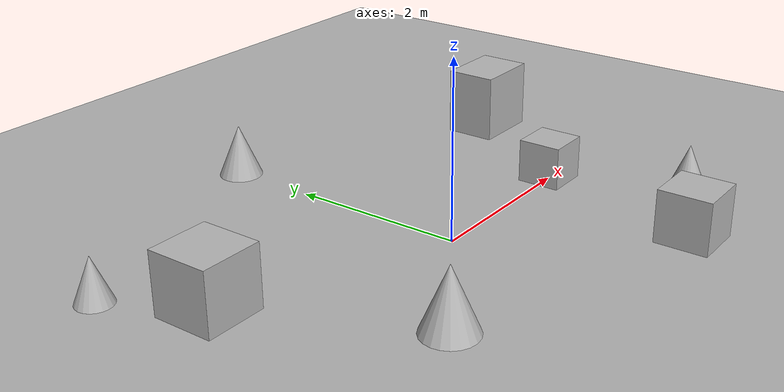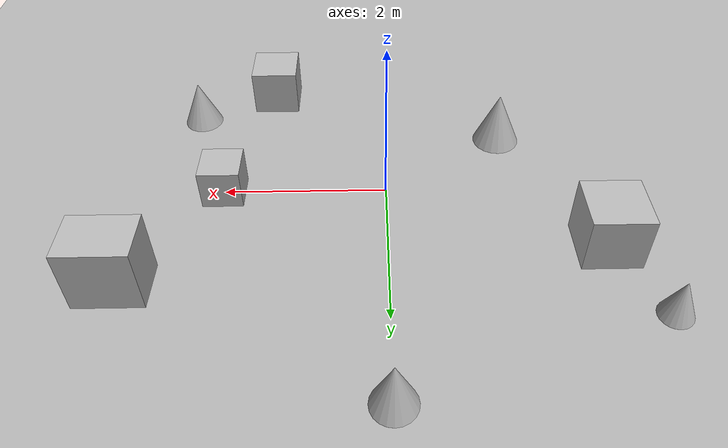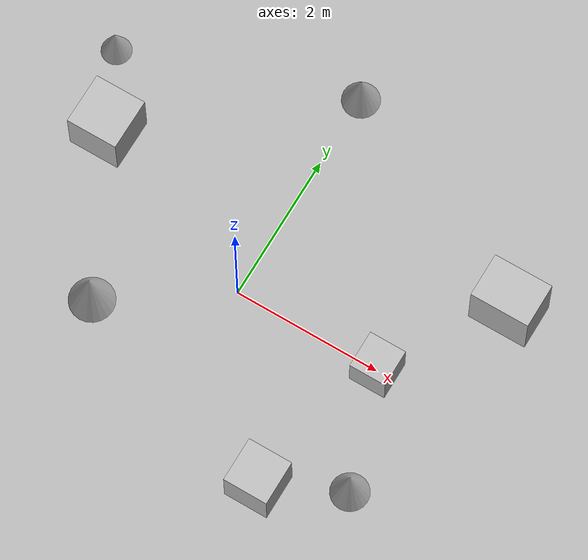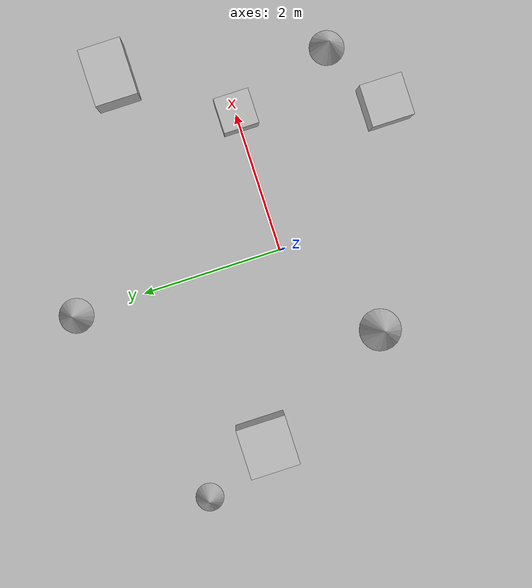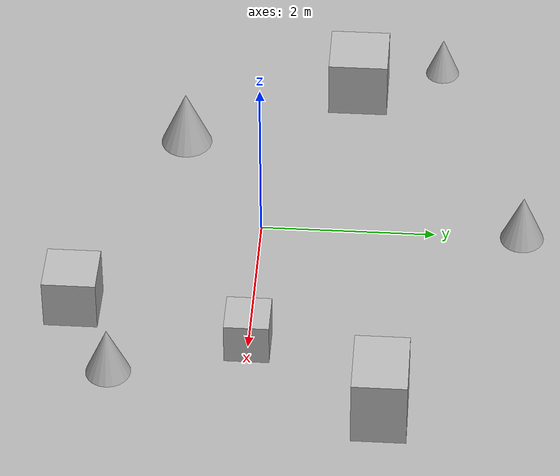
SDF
<?xml version="1.0" ?>
<sdf version="1.9">
  <world name="empty">

    <plugin filename="gz-sim-physics-system" name="gz::sim::systems::Physics"/>
    <plugin filename="gz-sim-user-commands-system" name="gz::sim::systems::UserCommands"/>
    <plugin filename="gz-sim-scene-broadcaster-system" name="gz::sim::systems::SceneBroadcaster"/>
    <plugin filename="gz-sim-sensors-system" name="gz::sim::systems::Sensors">
      <render_engine>ogre2</render_engine>
    </plugin>

    <scene>
      <ambient>0.4 0.4 0.4 1</ambient>
      <background>0.8 0.8 0.8 1</background>
    </scene>

    <light type="directional" name="sun">
      <cast_shadows>true</cast_shadows>
      <pose>0 0 10 0 0 0</pose>
      <diffuse>0.9 0.9 0.9 1</diffuse>
      <specular>0.2 0.2 0.2 1</specular>
      <attenuation>
        <range>1000</range>
        <constant>0.9</constant>
        <linear>0.01</linear>
        <quadratic>0.001</quadratic>
      </attenuation>
      <direction>-0.5 0.1 -1</direction>
    </light>

    <model name="ground_plane">
      <static>true</static>
      <link name="link">
        <collision name="collision">
          <geometry>
            <plane>
              <normal>0 0 1</normal>
              <size>100 100</size>
            </plane>
          </geometry>
        </collision>
        <visual name="visual">
          <geometry>
            <plane>
              <normal>0 0 1</normal>
              <size>100 100</size>
            </plane>
          </geometry>
          <material>
            <ambient>0.7 0.7 0.7 1</ambient>
            <diffuse>0.7 0.7 0.7 1</diffuse>
            <specular>0.1 0.1 0.1 1</specular>
          </material>
        </visual>
      </link>
    </model>

    <model name="box_1">
      <static>true</static>
      <pose>2 0 0.25 0 0 0</pose>
      <link name="link">
        <collision name="collision">
          <geometry><box><size>0.5 0.5 0.5</size></box></geometry>
        </collision>
        <visual name="visual">
          <geometry><box><size>0.5 0.5 0.5</size></box></geometry>
        </visual>
      </link>
    </model>

    <model name="box_2">
      <static>true</static>
      <pose>3 1.5 0.4 0 0 0</pose>
      <link name="link">
        <collision name="collision">
          <geometry><box><size>0.8 0.6 0.8</size></box></geometry>
        </collision>
        <visual name="visual">
          <geometry><box><size>0.8 0.6 0.8</size></box></geometry>
        </visual>
      </link>
    </model>

    <model name="box_3">
      <static>true</static>
      <pose>1.5 -2 0.3 0 0 0</pose>
      <link name="link">
        <collision name="collision">
          <geometry><box><size>0.6 0.6 0.6</size></box></geometry>
        </collision>
        <visual name="visual">
          <geometry><box><size>0.6 0.6 0.6</size></box></geometry>
        </visual>
      </link>
    </model>

    <model name="box_4">
      <static>true</static>
      <pose>-2.5 1 0.35 0 0 0</pose>
      <link name="link">
        <collision name="collision">
          <geometry><box><size>0.7 0.7 0.7</size></box></geometry>
        </collision>
        <visual name="visual">
          <geometry><box><size>0.7 0.7 0.7</size></box></geometry>
        </visual>
      </link>
    </model>

    <model name="cone_1">
      <static>true</static>
      <pose>2.5 -1.5 0.3 0 0 0</pose>
      <link name="link">
        <collision name="collision">
          <geometry><cone><radius>0.25</radius><length>0.6</length></cone></geometry>
        </collision>
        <visual name="visual">
          <geometry><cone><radius>0.25</radius><length>0.6</length></cone></geometry>
        </visual>
      </link>
    </model>

    <model name="cone_2">
      <static>true</static>
      <pose>-1.5 -1 0.35 0 0 0</pose>
      <link name="link">
        <collision name="collision">
          <geometry><cone><radius>0.3</radius><length>0.7</length></cone></geometry>
        </collision>
        <visual name="visual">
          <geometry><cone><radius>0.3</radius><length>0.7</length></cone></geometry>
        </visual>
      </link>
    </model>

    <model name="cone_3">
      <static>true</static>
      <pose>-3 2 0.25 0 0 0</pose>
      <link name="link">
        <collision name="collision">
          <geometry><cone><radius>0.2</radius><length>0.5</length></cone></geometry>
        </collision>
        <visual name="visual">
          <geometry><cone><radius>0.2</radius><length>0.5</length></cone></geometry>
        </visual>
      </link>
    </model>

    <model name="cone_4">
      <static>true</static>
      <pose>0 3 0.3 0 0 0</pose>
      <link name="link">
        <collision name="collision">
          <geometry><cone><radius>0.25</radius><length>0.6</length></cone></geometry>
        </collision>
        <visual name="visual">
          <geometry><cone><radius>0.25</radius><length>0.6</length></cone></geometry>
        </visual>
      </link>
    </model>

  </world>
</sdf>
